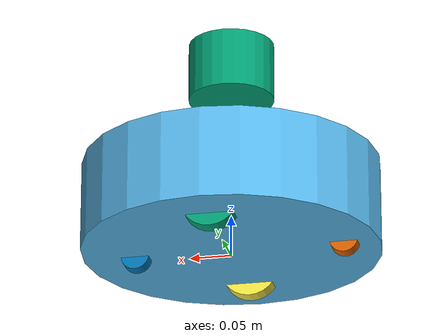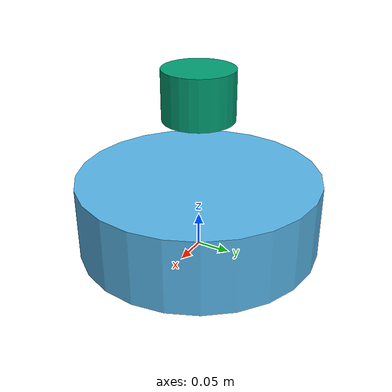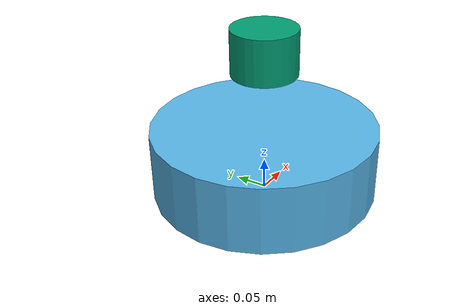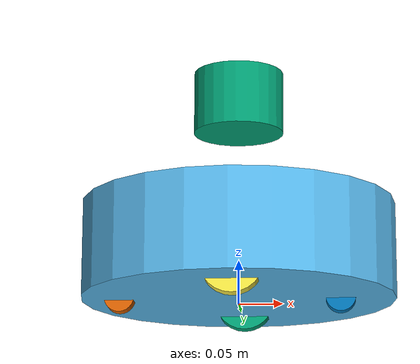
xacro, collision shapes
<?xml version="1.0"?>
<robot name="kobuki_VLP16" xmlns:xacro="http://ros.org/wiki/xacro">
    <!-- Arguments -->
    <xacro:arg name="is_sim" default="true"/>
    <xacro:arg name="VLP16_enabled" default="true"/>
    <xacro:arg name="gpu" default="false"/>
    <xacro:arg name="organize_cloud" default="false"/>

    <!-- Properties -->
    <xacro:property name="is_sim" value="$(arg is_sim)"/>
    <xacro:property name="VLP16_enabled" value="$(arg VLP16_enabled)"/>
    <xacro:property name="gpu" value="$(arg gpu)"/>
    <xacro:property name="organize_cloud" value="$(arg organize_cloud)"/>

    <!-- Defines the kobuki component tag. -->
    <xacro:include filename="$(find kobuki_description)/urdf/kobuki.urdf.xacro" />
    <xacro:kobuki is_sim="${is_sim}"/>

    <!-- Defines the VLP-16 component tag. -->
    <xacro:if value="$(arg VLP16_enabled)">
        <xacro:include filename="$(find velodyne_description)/urdf/VLP-16.urdf.xacro"/>
        <xacro:VLP-16 is_sim="${is_sim}" parent="base_link" name="velodyne" topic="/velodyne_points" organize_cloud="${organize_cloud}" hz="10" samples="440" gpu="${gpu}">
            <origin xyz="0 0 0.2" rpy="0 0 0" />
        </xacro:VLP-16>
    </xacro:if>
</robot>

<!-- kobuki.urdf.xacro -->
<robot name="kobuki" xmlns:xacro="http://ros.org/wiki/xacro">
  <xacro:include filename="$(find kobuki_description)/urdf/common_properties.urdf.xacro"/>
  <xacro:include filename="$(find kobuki_description)/urdf/kobuki_gazebo.urdf.xacro"/>

  <!-- Kobuki -->
  <xacro:macro name="kobuki" params="is_sim:=true">
    <link name="base_footprint"/>
    <joint name="base_joint" type="fixed">
      <origin xyz="0 0 -0.0102" rpy="0 0 0" />
      <parent link="base_link" />
      <child link="base_footprint" />
    </joint>
    <link name="base_link">
      <visual>
        <geometry>
          <!-- new mesh -->
          <mesh filename="package://kobuki_description/meshes/main_body.dae" />
        </geometry>
        <origin xyz="0.001 0 0.05199" rpy="0 0 0"/>
      </visual>
      <collision name="base">
        <geometry>
          <cylinder length="0.10938" radius="0.178"/>
        </geometry>
        <origin xyz="0.0 0 0.05949" rpy="0 0 0"/>
      </collision>
      <inertial>
        <!-- COM experimentally determined -->
        <origin xyz="0.01 0 0"/>
        <mass value="2.4"/> <!-- 2.4/2.6 kg for small/big battery pack -->
        <inertia ixx="0.019995" ixy="0.0" ixz="0.0"
                 iyy="0.019995" iyz="0.0"
                 izz="0.03675" />
      </inertial>
    </link>

    <joint name="wheel_left_joint" type="continuous">
      <parent link="base_link"/>
      <child link="wheel_left_link"/>
      <origin xyz="0.00 ${0.23/2} 0.0250" rpy="${-M_PI/2} 0 0"/>
      <axis xyz="0 0 1"/>
    </joint>
    <link name="wheel_left_link">
      <visual>
        <geometry>
          <mesh filename="package://kobuki_description/meshes/wheel.dae"/>
        </geometry>
        <origin xyz="0 0 0" rpy="0 0 0"/>
      </visual>
      <collision>
        <geometry>
          <cylinder length="0.0206" radius="0.035"/>
        </geometry>
        <origin rpy="0 0 0" xyz="0 0 0"/>
      </collision>
      <inertial>
        <mass value="0.01" />
        <origin xyz="0 0 0" />
        <inertia ixx="0.001" ixy="0.0" ixz="0.0"
                 iyy="0.001" iyz="0.0"
                 izz="0.001" />
      </inertial>
    </link>

    <joint name="wheel_right_joint" type="continuous">
      <parent link="base_link"/>
      <child link="wheel_right_link"/>
      <origin xyz="0.00 -${0.23/2} 0.0250" rpy="${-M_PI/2} 0 0"/>
      <axis xyz="0 0 1"/>
    </joint>
    <link name="wheel_right_link">
      <visual>
        <geometry>
          <mesh filename="package://kobuki_description/meshes/wheel.dae"/>
        </geometry>
        <origin xyz="0 0 0" rpy="0 0 0"/>
      </visual>
      <collision>
        <geometry>
          <cylinder length="0.0206" radius="0.035"/>
        </geometry>
        <origin rpy="0 0 0" xyz="0 0 0"/>
      </collision>
      <inertial>
        <mass value="0.01" />
        <origin xyz="0 0 0" />
        <inertia ixx="0.001" ixy="0.0" ixz="0.0"
                 iyy="0.001" iyz="0.0"
                 izz="0.001" />
      </inertial>
    </link>

    <joint name="caster_front_joint" type="fixed">
      <parent link="base_link"/>
      <child link="caster_front_link"/>
      <origin xyz="0.115 0.0 0.007" rpy="${-M_PI/2} 0 0"/>
    </joint>
    <link name="caster_front_link">
      <collision>
        <geometry>
          <cylinder length="0.0176" radius="0.017"/>
        </geometry>
        <origin rpy="0 0 0" xyz="0 0 0"/>
      </collision>
      <inertial>
        <mass value="0.01" />
        <origin xyz="0 0 0" />
        <inertia ixx="0.001" ixy="0.0" ixz="0.0"
                 iyy="0.001" iyz="0.0"
                 izz="0.001" />
      </inertial>
    </link>

    <joint name="caster_back_joint" type="fixed">
      <parent link="base_link"/>
      <child link="caster_back_link"/>
      <origin xyz="-0.135 0.0 0.009" rpy="${-M_PI/2} 0 0"/>
    </joint>
    <link name="caster_back_link">
      <collision>
        <geometry>
          <cylinder length="0.0176" radius="0.017"/>
        </geometry>
        <origin rpy="0 0 0" xyz="0 0 0"/>
      </collision>
      <inertial>
        <mass value="0.01" />
        <origin xyz="0 0 0" />
        <inertia ixx="0.001" ixy="0.0" ixz="0.0"
                 iyy="0.001" iyz="0.0"
                 izz="0.001" />
      </inertial>
    </link>

    <!-- Kobuki's sensors -->
    <joint name="gyro_joint" type="fixed">
      <axis xyz="0 1 0"/>
      <origin xyz="0.056 0.062 0.0202" rpy="0 0 0"/>
      <parent link="base_link"/>
      <child link="gyro_link"/>
    </joint>
    <link name="gyro_link">
      <inertial>
        <mass value="0.001"/>
        <origin xyz="0 0 0" rpy="0 0 0"/>
        <inertia ixx="0.0001" ixy="0" ixz="0"
                 iyy="0.000001" iyz="0"
                 izz="0.0001"/>
      </inertial>
    </link>

    <joint name="cliff_sensor_left_joint" type="fixed">
      <origin xyz="0.08734 0.13601 0.0214" rpy="0 ${M_PI/2} 0" />
      <parent link="base_link"/>
      <child link="cliff_sensor_left_link" />
    </joint>
    <link name="cliff_sensor_left_link">
      <inertial>
        <mass value="0.0001" />
        <origin xyz="0 0 0" />
        <inertia ixx="0.0001" ixy="0.0" ixz="0.0"
                 iyy="0.0001" iyz="0.0"
                 izz="0.0001" />
      </inertial>
    </link>

    <joint name="cliff_sensor_right_joint" type="fixed">
      <origin xyz="0.085 -0.13601 0.0214" rpy="0 ${M_PI/2} 0" />
      <parent link="base_link"/>
      <child link="cliff_sensor_right_link" />
    </joint>
    <link name="cliff_sensor_right_link">
      <inertial>
        <mass value="0.0001" />
        <origin xyz="0 0 0" />
        <inertia ixx="0.0001" ixy="0.0" ixz="0.0"
                 iyy="0.0001" iyz="0.0"
                 izz="0.0001" />
      </inertial>
    </link>

    <joint name="cliff_sensor_front_joint" type="fixed">
      <origin xyz="0.156 0.00 0.0214" rpy="0 ${M_PI/2} 0" />
      <parent link="base_link"/>
      <child link="cliff_sensor_front_link" />
    </joint>
    <link name="cliff_sensor_front_link">
      <inertial>
        <mass value="0.0001" />
        <origin xyz="0 0 0" />
        <inertia ixx="0.0001" ixy="0.0" ixz="0.0"
                 iyy="0.0001" iyz="0.0"
                 izz="0.0001" />
      </inertial>
    </link>

    <!-- Kobuki Gazebo simulation details -->
    <xacro:if value="$(arg is_sim)">
        <xacro:kobuki_sim/>
    </xacro:if>

  </xacro:macro>
</robot>

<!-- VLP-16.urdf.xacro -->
<robot xmlns:xacro="http://www.ros.org/wiki/xacro" name="VLP-16">
  <xacro:property name="M_PI" value="3.1415926535897931" />
  <xacro:macro name="VLP-16" params="*origin is_sim:=true parent:=base_link name:=velodyne tf_prefix:='' topic:=/velodyne_points organize_cloud:=false hz:=10 lasers:=16 samples:=1875 collision_range:=0.3 min_range:=0.0 max_range:=100.0 noise:=0.008 min_angle:=-${M_PI} max_angle:=${M_PI} gpu:=false">

    <joint name="${name}_base_mount_joint" type="fixed">
      <xacro:insert_block name="origin" />
      <parent link="${parent}"/>
      <child link="${name}_base_link"/>
    </joint>

    <link name="${name}_base_link">
      <inertial>
        <mass value="0.83"/>
        <origin xyz="0 0 0.03585"/>
        <inertia ixx="${(0.83 * (3.0*0.0516*0.0516 + 0.0717*0.0717)) / 12.0}" ixy="0" ixz="0"
          iyy="${(0.83 * (3.0*0.0516*0.0516 + 0.0717*0.0717)) / 12.0}" iyz="0"
          izz="${0.5 * 0.83 * (0.0516*0.0516)}"/>
      </inertial>
      <visual>
        <geometry>
          <mesh filename="package://velodyne_description/meshes/VLP16_base_1.dae" />
        </geometry>
      </visual>
      <visual>
        <geometry>
          <mesh filename="package://velodyne_description/meshes/VLP16_base_2.dae" />
        </geometry>
      </visual>
      <collision>
        <origin rpy="0 0 0" xyz="0 0 0.03585"/>
        <geometry>
          <cylinder radius="0.0516" length="0.0717"/>
        </geometry>
      </collision>
    </link>

    <joint name="${name}_base_scan_joint" type="fixed" >
      <origin xyz="0 0 0.0377" rpy="0 0 0" />
      <parent link="${name}_base_link" />
      <child link="${name}"/>
    </joint>

    <link name="${name}">
      <inertial>
        <mass value="0.01"/>
        <origin xyz="0 0 0"/>
        <inertia ixx="1e-7" ixy="0" ixz="0" iyy="1e-7" iyz="0" izz="1e-7"/>
      </inertial>
      <visual>
        <origin xyz="0 0 -0.0377" />
        <geometry>
          <mesh filename="package://velodyne_description/meshes/VLP16_scan.dae" />
        </geometry>
      </visual>
      <collision>
        <geometry>
          <sphere radius="0"/>
        </geometry>
      </collision>
    </link>

    <!-- Gazebo requires the velodyne_gazebo_plugins package -->
    <xacro:if value="${is_sim}">
        <gazebo reference="${name}">
            <xacro:if value="${gpu}">
                <sensor type="gpu_ray" name="${name}-VLP16">
                <pose>0 0 0 0 0 0</pose>
                <visualize>false</visualize>
                <update_rate>${hz}</update_rate>
                <ray>
                    <scan>
                    <horizontal>
                        <samples>${samples}</samples>
                        <resolution>1</resolution>
                        <min_angle>${min_angle}</min_angle>
                        <max_angle>${max_angle}</max_angle>
                    </horizontal>
                    <vertical>
                        <samples>${lasers}</samples>
                        <resolution>1</resolution>
                        <min_angle>-${15.0*M_PI/180.0}</min_angle>
                        <max_angle> ${15.0*M_PI/180.0}</max_angle>
                    </vertical>
                    </scan>
                    <range>
                    <min>${collision_range}</min>
                    <max>${max_range+1}</max>
                    <resolution>0.001</resolution>
                    </range>
                    <noise>
                    <type>gaussian</type>
                    <mean>0.0</mean>
                    <stddev>0.0</stddev>
                    </noise>
                </ray>
                <plugin name="gazebo_ros_laser_controller" filename="libgazebo_ros_velodyne_laser.so">
                    <ros>
                    <namespace>/${name}</namespace>
                    <remapping>~/out:=${topic}</remapping>
                    </ros>
                    <tf_prefix>${tf_prefix}</tf_prefix>
                    <frame_name>${name}</frame_name>
                    <organize_cloud>${organize_cloud}</organize_cloud>
                    <min_range>${min_range}</min_range>
                    <max_range>${max_range}</max_range>
                    <gaussian_noise>${noise}</gaussian_noise>
                </plugin>
                </sensor>
            </xacro:if>
            <xacro:unless value="${gpu}">
                <sensor type="ray" name="${name}-VLP16">
                <pose>0 0 0 0 0 0</pose>
                <visualize>false</visualize>
                <update_rate>${hz}</update_rate>
                <ray>
                    <scan>
                    <horizontal>
                        <samples>${samples}</samples>
                        <resolution>1</resolution>
                        <min_angle>${min_angle}</min_angle>
                        <max_angle>${max_angle}</max_angle>
                    </horizontal>
                    <vertical>
                        <samples>${lasers}</samples>
                        <resolution>1</resolution>
                        <min_angle>-${15.0*M_PI/180.0}</min_angle>
                        <max_angle> ${15.0*M_PI/180.0}</max_angle>
                    </vertical>
                    </scan>
                    <range>
                    <min>${collision_range}</min>
                    <max>${max_range+1}</max>
                    <resolution>0.001</resolution>
                    </range>
                    <noise>
                    <type>gaussian</type>
                    <mean>0.0</mean>
                    <stddev>0.0</stddev>
                    </noise>
                </ray>
                <plugin name="gazebo_ros_laser_controller" filename="libgazebo_ros_velodyne_laser.so">
                    <ros>
                    <namespace>/${name}</namespace>
                    <remapping>~/out:=${topic}</remapping>
                    </ros>
                    <tf_prefix>${tf_prefix}</tf_prefix>
                    <frame_name>${name}</frame_name>
                    <organize_cloud>${organize_cloud}</organize_cloud>
                    <min_range>${min_range}</min_range>
                    <max_range>${max_range}</max_range>
                    <gaussian_noise>${noise}</gaussian_noise>
                </plugin>
                </sensor>
            </xacro:unless>
        </gazebo>
    </xacro:if>

  </xacro:macro>
</robot>
